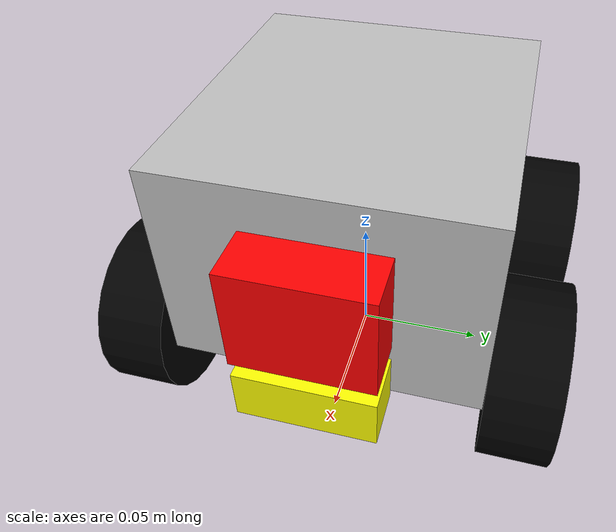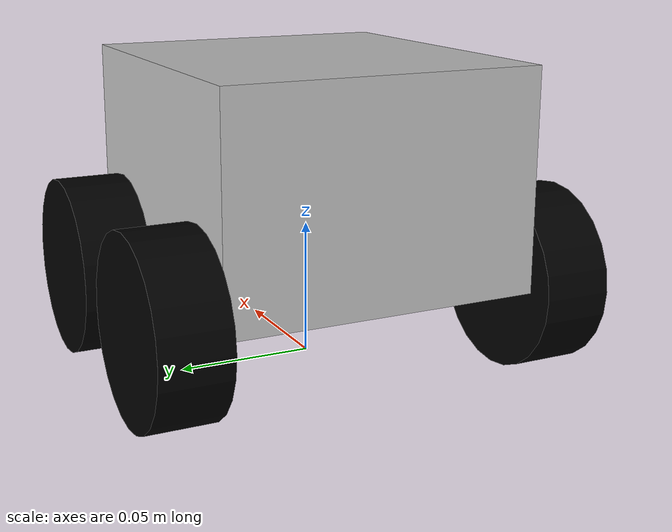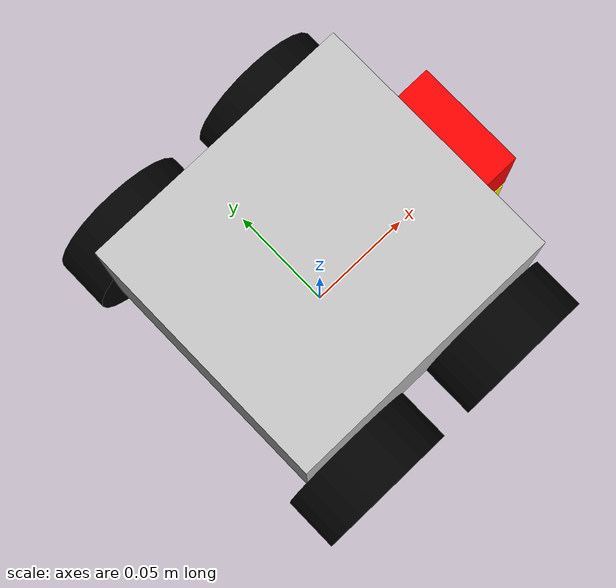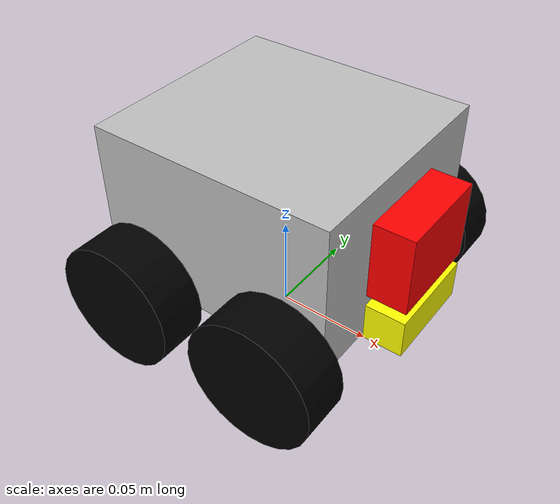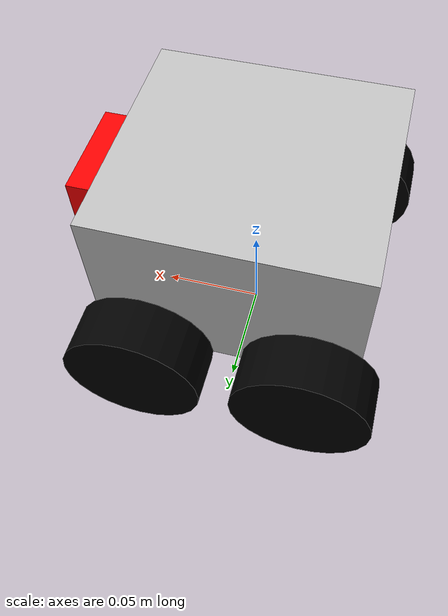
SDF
<sdf version='1.11'>
  <model name='simple_bot'>
    <link name='base_link'>
      <inertial>
        <pose>0 0 0 0 0 0</pose>
        <mass>1</mass>
        <inertia>
          <ixx>0.001</ixx>
          <ixy>0</ixy>
          <ixz>0</ixz>
          <iyy>0.001</iyy>
          <iyz>0</iyz>
          <izz>0.001</izz>
        </inertia>
      </inertial>
      <collision name='base_link_fixed_joint_lump__base_collision_collision'>
        <pose>0 0 0.073000000000000009 0 0 0</pose>
        <geometry>
          <box>
            <size>0.125 0.115 0.080000000000000002</size>
          </box>
        </geometry>
      </collision>
      <visual name='base_link_visual'>
        <pose>0 0 0.073000000000000009 0 0 0</pose>
        <geometry>
          <box>
            <size>0.125 0.115 0.080000000000000002</size>
          </box>
        </geometry>
        <material>
          <diffuse>0.75000006 0.75000006 0.75000006 1</diffuse>
          <ambient>0.75000006 0.75000006 0.75000006 1</ambient>
        </material>
      </visual>
      <visual name='base_link_fixed_joint_lump__camera_link_visual_1'>
        <pose>0.072499999999999995 0 0.075999999999999998 0 0 0</pose>
        <geometry>
          <box>
            <size>0.02 0.050000000000000003 0.040000000000000001</size>
          </box>
        </geometry>
        <material>
          <diffuse>1 0 0 1</diffuse>
          <ambient>1 0 0 1</ambient>
        </material>
      </visual>
      <visual name='base_link_fixed_joint_lump__ultrasonic_link_visual_2'>
        <pose>0.072499999999999995 0 0.040000000000000001 0 0 0</pose>
        <geometry>
          <box>
            <size>0.02 0.050000000000000003 0.02</size>
          </box>
        </geometry>
        <material>
          <diffuse>1 1 0 1</diffuse>
          <ambient>1 1 0 1</ambient>
        </material>
      </visual>
    </link>
    <joint name='left_front_wheel_joint' type='revolute'>
      <pose relative_to='base_link'>0.040000000000000001 0.070000000000000007 0.033000000000000002 0 0 0</pose>
      <parent>base_link</parent>
      <child>left_front_wheel_link</child>
      <axis>
        <xyz>0 1 0</xyz>
        <limit>
          <lower>-inf</lower>
          <upper>inf</upper>
        </limit>
        <dynamics>
          <spring_reference>0</spring_reference>
          <spring_stiffness>0</spring_stiffness>
        </dynamics>
      </axis>
    </joint>
    <link name='left_front_wheel_link'>
      <pose relative_to='left_front_wheel_joint'>0 0 0 0 0 0</pose>
      <inertial>
        <pose>0 0 0 0 0 0</pose>
        <mass>0.20000000000000001</mass>
        <inertia>
          <ixx>5.5999999999999999e-05</ixx>
          <ixy>0</ixy>
          <ixz>0</ixz>
          <iyy>5.5999999999999999e-05</iyy>
          <iyz>0</iyz>
          <izz>9.0000000000000006e-05</izz>
        </inertia>
      </inertial>
      <collision name='left_front_wheel_link_fixed_joint_lump__left_front_wheel_collision_collision'>
        <pose>0 0 0 1.5708 0 0</pose>
        <geometry>
          <cylinder>
            <length>0.025000000000000001</length>
            <radius>0.033000000000000002</radius>
          </cylinder>
        </geometry>
      </collision>
      <visual name='left_front_wheel_link_visual'>
        <pose>0 0 0 1.5708 0 0</pose>
        <geometry>
          <cylinder>
            <length>0.025000000000000001</length>
            <radius>0.033000000000000002</radius>
          </cylinder>
        </geometry>
        <material>
          <diffuse>0 0 0 1</diffuse>
          <ambient>0 0 0 1</ambient>
        </material>
      </visual>
    </link>
    <joint name='left_rear_wheel_joint' type='revolute'>
      <pose relative_to='base_link'>-0.040000000000000001 0.070000000000000007 0.033000000000000002 0 0 0</pose>
      <parent>base_link</parent>
      <child>left_rear_wheel_link</child>
      <axis>
        <xyz>0 1 0</xyz>
        <limit>
          <lower>-inf</lower>
          <upper>inf</upper>
        </limit>
        <dynamics>
          <spring_reference>0</spring_reference>
          <spring_stiffness>0</spring_stiffness>
        </dynamics>
      </axis>
    </joint>
    <link name='left_rear_wheel_link'>
      <pose relative_to='left_rear_wheel_joint'>0 0 0 0 0 0</pose>
      <inertial>
        <pose>0 0 0 0 0 0</pose>
        <mass>0.20000000000000001</mass>
        <inertia>
          <ixx>5.5999999999999999e-05</ixx>
          <ixy>0</ixy>
          <ixz>0</ixz>
          <iyy>5.5999999999999999e-05</iyy>
          <iyz>0</iyz>
          <izz>9.0000000000000006e-05</izz>
        </inertia>
      </inertial>
      <collision name='left_rear_wheel_link_fixed_joint_lump__left_rear_wheel_collision_collision'>
        <pose>0 0 0 1.5708 0 0</pose>
        <geometry>
          <cylinder>
            <length>0.025000000000000001</length>
            <radius>0.033000000000000002</radius>
          </cylinder>
        </geometry>
      </collision>
      <visual name='left_rear_wheel_link_visual'>
        <pose>0 0 0 1.5708 0 0</pose>
        <geometry>
          <cylinder>
            <length>0.025000000000000001</length>
            <radius>0.033000000000000002</radius>
          </cylinder>
        </geometry>
        <material>
          <diffuse>0 0 0 1</diffuse>
          <ambient>0 0 0 1</ambient>
        </material>
      </visual>
    </link>
    <joint name='right_front_wheel_joint' type='revolute'>
      <pose relative_to='base_link'>0.040000000000000001 -0.070000000000000007 0.033000000000000002 0 0 0</pose>
      <parent>base_link</parent>
      <child>right_front_wheel_link</child>
      <axis>
        <xyz>0 1 0</xyz>
        <limit>
          <lower>-inf</lower>
          <upper>inf</upper>
        </limit>
        <dynamics>
          <spring_reference>0</spring_reference>
          <spring_stiffness>0</spring_stiffness>
        </dynamics>
      </axis>
    </joint>
    <link name='right_front_wheel_link'>
      <pose relative_to='right_front_wheel_joint'>0 0 0 0 0 0</pose>
      <inertial>
        <pose>0 0 0 0 0 0</pose>
        <mass>0.20000000000000001</mass>
        <inertia>
          <ixx>5.5999999999999999e-05</ixx>
          <ixy>0</ixy>
          <ixz>0</ixz>
          <iyy>5.5999999999999999e-05</iyy>
          <iyz>0</iyz>
          <izz>9.0000000000000006e-05</izz>
        </inertia>
      </inertial>
      <collision name='right_front_wheel_link_fixed_joint_lump__right_front_wheel_collision_collision'>
        <pose>0 0 0 1.5708 0 0</pose>
        <geometry>
          <cylinder>
            <length>0.025000000000000001</length>
            <radius>0.033000000000000002</radius>
          </cylinder>
        </geometry>
      </collision>
      <visual name='right_front_wheel_link_visual'>
        <pose>0 0 0 1.5708 0 0</pose>
        <geometry>
          <cylinder>
            <length>0.025000000000000001</length>
            <radius>0.033000000000000002</radius>
          </cylinder>
        </geometry>
        <material>
          <diffuse>0 0 0 1</diffuse>
          <ambient>0 0 0 1</ambient>
        </material>
      </visual>
    </link>
    <joint name='right_rear_wheel_joint' type='revolute'>
      <pose relative_to='base_link'>-0.040000000000000001 -0.070000000000000007 0.033000000000000002 0 0 0</pose>
      <parent>base_link</parent>
      <child>right_rear_wheel_link</child>
      <axis>
        <xyz>0 1 0</xyz>
        <limit>
          <lower>-inf</lower>
          <upper>inf</upper>
        </limit>
        <dynamics>
          <spring_reference>0</spring_reference>
          <spring_stiffness>0</spring_stiffness>
        </dynamics>
      </axis>
    </joint>
    <link name='right_rear_wheel_link'>
      <pose relative_to='right_rear_wheel_joint'>0 0 0 0 0 0</pose>
      <inertial>
        <pose>0 0 0 0 0 0</pose>
        <mass>0.20000000000000001</mass>
        <inertia>
          <ixx>5.5999999999999999e-05</ixx>
          <ixy>0</ixy>
          <ixz>0</ixz>
          <iyy>5.5999999999999999e-05</iyy>
          <iyz>0</iyz>
          <izz>9.0000000000000006e-05</izz>
        </inertia>
      </inertial>
      <visual name='right_rear_wheel_link_visual'>
        <pose>0 0 0 1.5708 0 0</pose>
        <geometry>
          <cylinder>
            <length>0.025000000000000001</length>
            <radius>0.033000000000000002</radius>
          </cylinder>
        </geometry>
        <material>
          <diffuse>0 0 0 1</diffuse>
          <ambient>0 0 0 1</ambient>
        </material>
      </visual>
    </link>
    <frame name='camera_joint' attached_to='base_link'>
      <pose>0.072499999999999995 0 0.075999999999999998 0 0 0</pose>
    </frame>
    <frame name='camera_link' attached_to='camera_joint'>
      <pose>0 0 0 0 0 0</pose>
    </frame>
    <frame name='ultrasonic_joint' attached_to='base_link'>
      <pose>0.072499999999999995 0 0.040000000000000001 0 0 0</pose>
    </frame>
    <frame name='ultrasonic_link' attached_to='ultrasonic_joint'>
      <pose>0 0 0 0 0 0</pose>
    </frame>
  </model>
</sdf>
